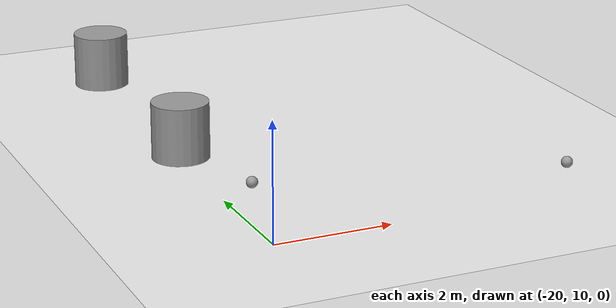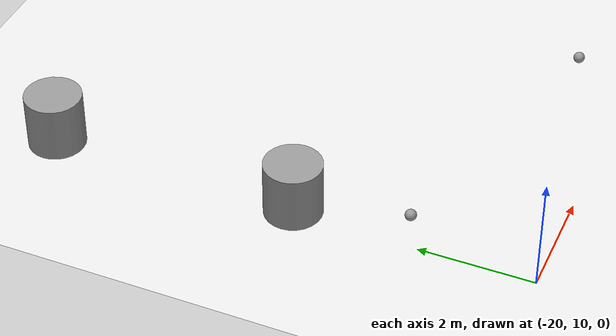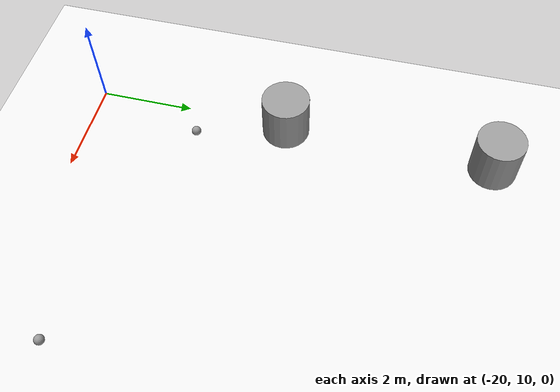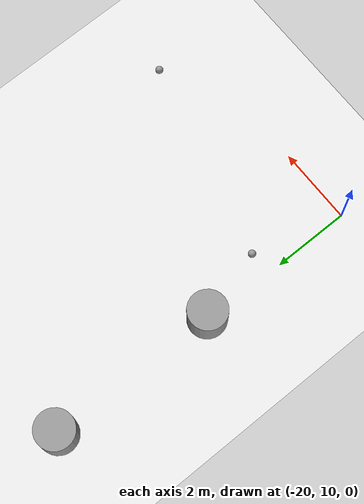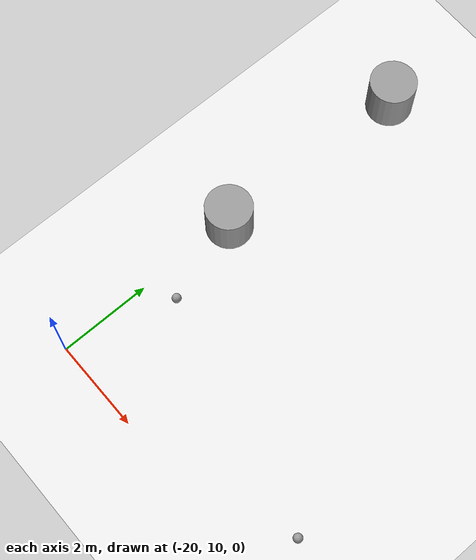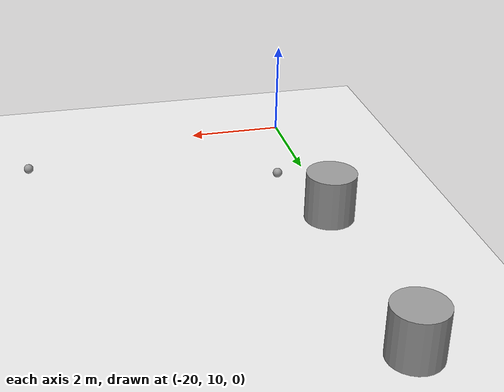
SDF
<sdf version="1.7">
 <world name="default">
  <model name="ground_plane">
   <static>1</static>
   <link name="link">
    <collision name="collision">
     <geometry><plane><normal>0 0 1</normal><size>100 100</size></plane></geometry>
     <surface><friction><ode><mu>100</mu><mu2>50</mu2></ode></friction></surface>
    </collision>
    <visual name="visual">
     <cast_shadows>0</cast_shadows>
     <geometry><plane><normal>0 0 1</normal><size>100 100</size></plane></geometry>
     <material>
      <script><uri>file://media/materials/scripts/gazebo.material</uri><name>Gazebo/White</name></script>
     </material>
    </visual>
   </link>
  </model>
  <model name="model2.10">
   <link name="link_12">
    <inertial>
     <mass>1</mass>
     <inertia><ixx>0.145833</ixx><ixy>0</ixy><ixz>0</ixz><iyy>0.145833</iyy><iyz>0</iyz><izz>0.125</izz></inertia>
    </inertial>
    <pose>-3e-06 1e-06 0 0 -0 0</pose>
    <visual name="visual">
     <geometry><cylinder><radius>0.5</radius><length>1</length></cylinder></geometry>
     <material>
      <lighting>1</lighting>
      <script><uri>file://media/materials/scripts/gazebo.material</uri><name>Gazebo/Grey</name></script>
      <shader type="pixel"/>
     </material>
    </visual>
    <collision name="collision">
     <geometry><cylinder><radius>0.5</radius><length>1</length></cylinder></geometry>
     <surface>
      <friction>
       <ode><mu>1</mu><mu2>1</mu2><fdir1>0 0 0</fdir1><slip1>0</slip1><slip2>0</slip2></ode>
       <torsional>
        <coefficient>1</coefficient>
        <patch_radius>0</patch_radius>
        <surface_radius>0</surface_radius>
        <use_patch_radius>1</use_patch_radius>
        <ode><slip>0</slip></ode>
       </torsional>
      </friction>
      <bounce><restitution_coefficient>0</restitution_coefficient><threshold>1e+06</threshold></bounce>
      <contact>
       <collide_without_contact>0</collide_without_contact>
       <collide_without_contact_bitmask>1</collide_without_contact_bitmask>
       <collide_bitmask>1</collide_bitmask>
       <ode>
        <soft_cfm>0</soft_cfm>
        <soft_erp>0.2</soft_erp>
        <kp>1e+13</kp>
        <kd>1</kd>
        <max_vel>0</max_vel>
        <min_depth>0.001</min_depth>
       </ode>
       <bullet>
        <split_impulse>1</split_impulse>
        <split_impulse_penetration_threshold>-0.01</split_impulse_penetration_threshold>
        <soft_cfm>0</soft_cfm>
        <soft_erp>0.2</soft_erp>
        <kp>1e+13</kp>
        <kd>1</kd>
       </bullet>
      </contact>
     </surface>
    </collision>
   </link>
   <static>0</static>
   <pose>-19.8516 18.6295 0.499 0 -0 0</pose>
  </model>
  <model name="model2.4">
   <link name="link_4">
    <inertial>
     <mass>1</mass>
     <inertia><ixx>0.145833</ixx><ixy>0</ixy><ixz>0</ixz><iyy>0.145833</iyy><iyz>0</iyz><izz>0.125</izz></inertia>
    </inertial>
    <pose>-3e-06 0 0 0 -0 0</pose>
    <visual name="visual">
     <geometry><cylinder><radius>0.5</radius><length>1</length></cylinder></geometry>
     <material>
      <lighting>1</lighting>
      <script><uri>file://media/materials/scripts/gazebo.material</uri><name>Gazebo/Grey</name></script>
      <shader type="pixel"/>
     </material>
    </visual>
    <collision name="collision">
     <geometry><cylinder><radius>0.5</radius><length>1</length></cylinder></geometry>
     <surface>
      <friction>
       <ode><mu>1</mu><mu2>1</mu2><fdir1>0 0 0</fdir1><slip1>0</slip1><slip2>0</slip2></ode>
       <torsional>
        <coefficient>1</coefficient>
        <patch_radius>0</patch_radius>
        <surface_radius>0</surface_radius>
        <use_patch_radius>1</use_patch_radius>
        <ode><slip>0</slip></ode>
       </torsional>
      </friction>
      <bounce><restitution_coefficient>0</restitution_coefficient><threshold>1e+06</threshold></bounce>
      <contact>
       <collide_without_contact>0</collide_without_contact>
       <collide_without_contact_bitmask>1</collide_without_contact_bitmask>
       <collide_bitmask>1</collide_bitmask>
       <ode>
        <soft_cfm>0</soft_cfm>
        <soft_erp>0.2</soft_erp>
        <kp>1e+13</kp>
        <kd>1</kd>
        <max_vel>0</max_vel>
        <min_depth>0.001</min_depth>
       </ode>
       <bullet>
        <split_impulse>1</split_impulse>
        <split_impulse_penetration_threshold>-0.01</split_impulse_penetration_threshold>
        <soft_cfm>0</soft_cfm>
        <soft_erp>0.2</soft_erp>
        <kp>1e+13</kp>
        <kd>1</kd>
       </bullet>
      </contact>
     </surface>
    </collision>
   </link>
   <static>0</static>
   <pose>-19.9097 14.1982 0.499 0 -0 0</pose>
  </model>
  <model name="sphere">
   <link name="link_0">
    <inertial>
     <mass>1</mass>
     <inertia><ixx>0.1</ixx><ixy>0</ixy><ixz>0</ixz><iyy>0.1</iyy><iyz>0</iyz><izz>0.1</izz></inertia>
    </inertial>
    <visual name="visual">
     <geometry><sphere><radius>0.1</radius></sphere></geometry>
     <material>
      <lighting>1</lighting>
      <script><uri>file://media/materials/scripts/gazebo.material</uri><name>Gazebo/Grey</name></script>
      <shader type="pixel"><normal_map>__default__</normal_map></shader>
      <ambient>0.3 0.3 0.3 1</ambient>
      <diffuse>0.7 0.7 0.7 1</diffuse>
      <specular>0.01 0.01 0.01 1</specular>
      <emissive>0 0 0 1</emissive>
     </material>
    </visual>
    <collision name="collision">
     <geometry><sphere><radius>0.1</radius></sphere></geometry>
     <surface>
      <friction>
       <ode><mu>1</mu><mu2>1</mu2><fdir1>0 0 0</fdir1><slip1>0</slip1><slip2>0</slip2></ode>
       <torsional>
        <coefficient>1</coefficient>
        <patch_radius>0</patch_radius>
        <surface_radius>0</surface_radius>
        <use_patch_radius>1</use_patch_radius>
        <ode><slip>0</slip></ode>
       </torsional>
      </friction>
      <bounce><restitution_coefficient>0</restitution_coefficient><threshold>1e+06</threshold></bounce>
      <contact>
       <collide_without_contact>0</collide_without_contact>
       <collide_without_contact_bitmask>1</collide_without_contact_bitmask>
       <collide_bitmask>1</collide_bitmask>
       <ode>
        <soft_cfm>0</soft_cfm>
        <soft_erp>0.2</soft_erp>
        <kp>1e+13</kp>
        <kd>1</kd>
        <max_vel>0.01</max_vel>
        <min_depth>0</min_depth>
       </ode>
       <bullet>
        <split_impulse>1</split_impulse>
        <split_impulse_penetration_threshold>-0.01</split_impulse_penetration_threshold>
        <soft_cfm>0</soft_cfm>
        <soft_erp>0.2</soft_erp>
        <kp>1e+13</kp>
        <kd>1</kd>
       </bullet>
      </contact>
     </surface>
    </collision>
   </link>
   <static>0</static>
   <pose>-14.1838 11.056 0.1 -0.015918 -0.013577 -6e-05</pose>
  </model>
  <model name="sphere_4">
   <link name="link_0">
    <inertial>
     <mass>1</mass>
     <inertia><ixx>0.1</ixx><ixy>0</ixy><ixz>0</ixz><iyy>0.1</iyy><iyz>0</iyz><izz>0.1</izz></inertia>
    </inertial>
    <visual name="visual">
     <geometry><sphere><radius>0.1</radius></sphere></geometry>
     <material>
      <lighting>1</lighting>
      <script><uri>file://media/materials/scripts/gazebo.material</uri><name>Gazebo/Grey</name></script>
      <shader type="pixel"><normal_map>__default__</normal_map></shader>
      <ambient>0.3 0.3 0.3 1</ambient>
      <diffuse>0.7 0.7 0.7 1</diffuse>
      <specular>0.01 0.01 0.01 1</specular>
      <emissive>0 0 0 1</emissive>
     </material>
    </visual>
    <collision name="collision">
     <geometry><sphere><radius>0.1</radius></sphere></geometry>
     <surface>
      <friction>
       <ode><mu>1</mu><mu2>1</mu2><fdir1>0 0 0</fdir1><slip1>0</slip1><slip2>0</slip2></ode>
       <torsional>
        <coefficient>1</coefficient>
        <patch_radius>0</patch_radius>
        <surface_radius>0</surface_radius>
        <use_patch_radius>1</use_patch_radius>
        <ode><slip>0</slip></ode>
       </torsional>
      </friction>
      <bounce><restitution_coefficient>0</restitution_coefficient><threshold>1e+06</threshold></bounce>
      <contact>
       <collide_without_contact>0</collide_without_contact>
       <collide_without_contact_bitmask>1</collide_without_contact_bitmask>
       <collide_bitmask>1</collide_bitmask>
       <ode>
        <soft_cfm>0</soft_cfm>
        <soft_erp>0.2</soft_erp>
        <kp>1e+13</kp>
        <kd>1</kd>
        <max_vel>0.01</max_vel>
        <min_depth>0</min_depth>
       </ode>
       <bullet>
        <split_impulse>1</split_impulse>
        <split_impulse_penetration_threshold>-0.01</split_impulse_penetration_threshold>
        <soft_cfm>0</soft_cfm>
        <soft_erp>0.2</soft_erp>
        <kp>1e+13</kp>
        <kd>1</kd>
       </bullet>
      </contact>
     </surface>
    </collision>
   </link>
   <static>0</static>
   <pose>-19.3703 12.3458 0.1 -0.29888 -0.231814 0.016243</pose>
  </model>
 </world>
</sdf>
